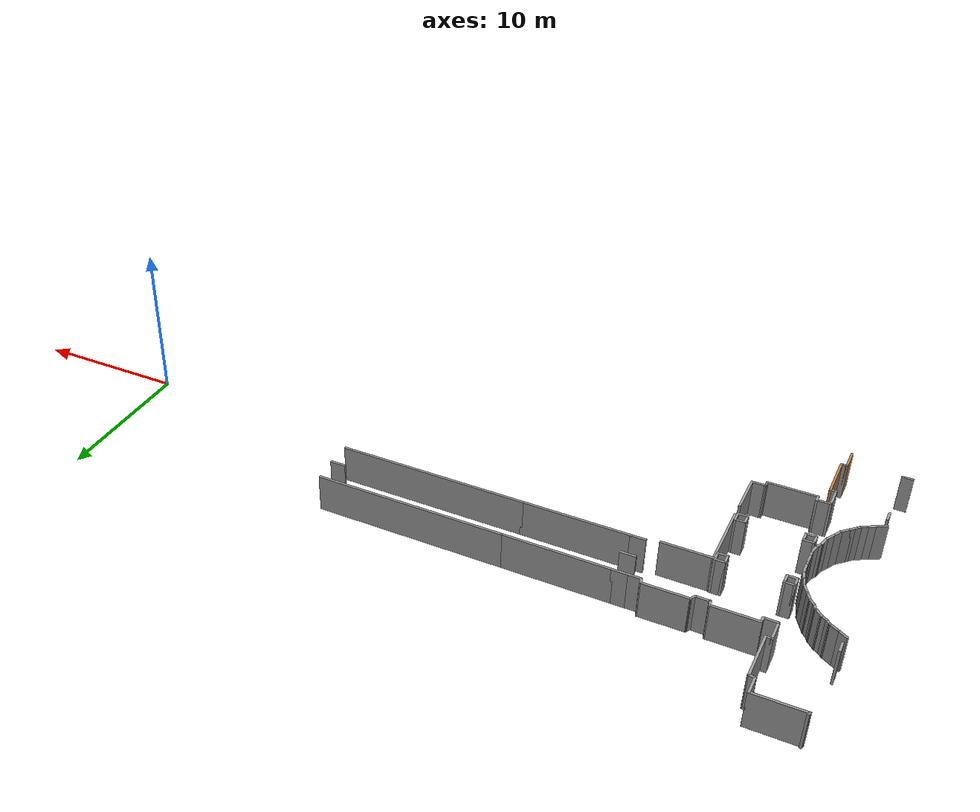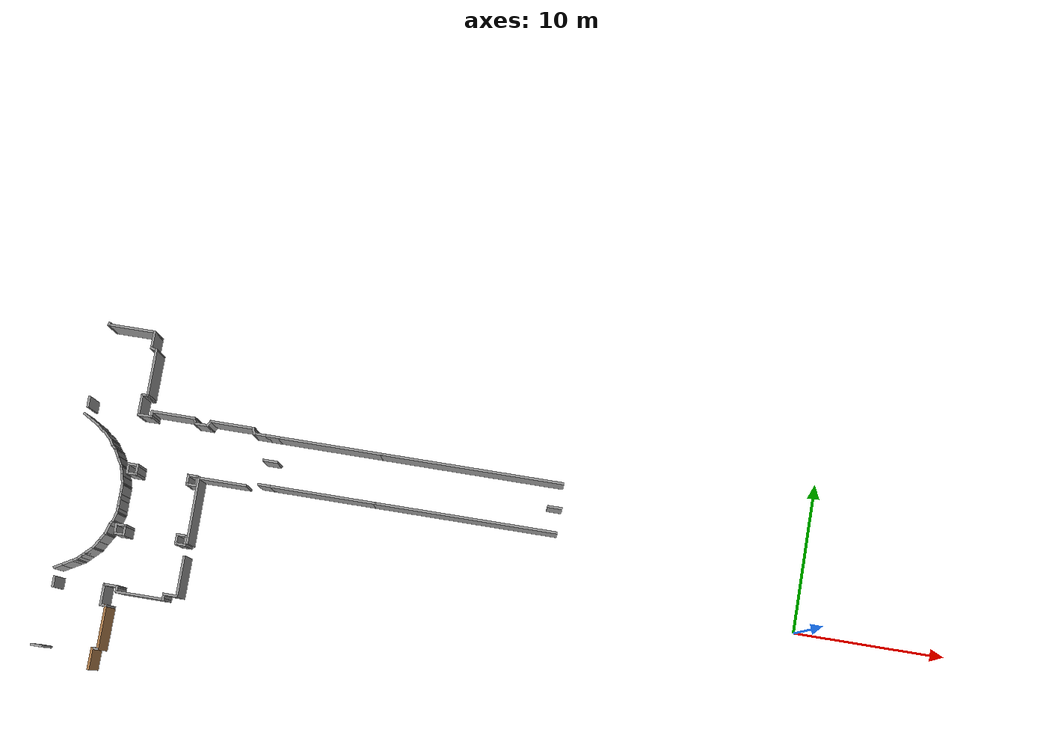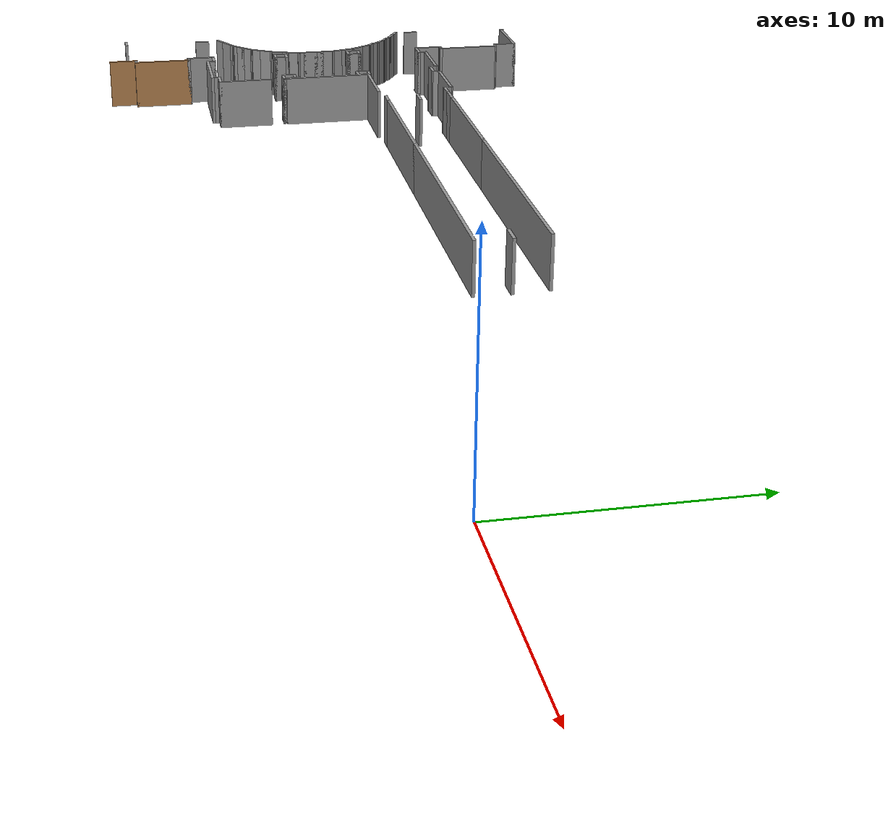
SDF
<sdf version="1.7">
 <model name="TD_1">
  <pose>-32.4963 -12.7971 0 0 -0 0</pose>
  <link name="Wall_222">
   <collision name="Wall_222_Collision">
    <geometry><box><size>1.5 0.15 2.5</size></box></geometry>
    <pose>0 0 1.25 0 -0 0</pose>
   </collision>
   <visual name="Wall_222_Visual">
    <pose>0 0 1.25 0 -0 0</pose>
    <geometry><box><size>1.5 0.15 2.5</size></box></geometry>
    <material>
     <script><uri>file://media/materials/scripts/gazebo.material</uri><name>Gazebo/Wood</name></script>
     <ambient>1 1 1 1</ambient>
    </material>
    <meta><layer>0</layer></meta>
   </visual>
   <pose>-12.7603 3.65938 0 0 -0 1.5708</pose>
  </link>
  <link name="Wall_223">
   <collision name="Wall_223_Collision">
    <geometry><box><size>0.5 0.15 2.5</size></box></geometry>
    <pose>0 0 1.25 0 -0 0</pose>
   </collision>
   <visual name="Wall_223_Visual">
    <pose>0 0 1.25 0 -0 0</pose>
    <geometry><box><size>0.5 0.15 2.5</size></box></geometry>
    <material>
     <script><uri>file://media/materials/scripts/gazebo.material</uri><name>Gazebo/Grey</name></script>
     <ambient>1 1 1 1</ambient>
    </material>
    <meta><layer>0</layer></meta>
   </visual>
   <pose>-12.5853 4.33438 0 0 -0 0</pose>
  </link>
  <link name="Wall_224">
   <collision name="Wall_224_Collision">
    <geometry><box><size>3 0.15 2.5</size></box></geometry>
    <pose>0 0 1.25 0 -0 0</pose>
   </collision>
   <visual name="Wall_224_Visual">
    <pose>0 0 1.25 0 -0 0</pose>
    <geometry><box><size>3 0.15 2.5</size></box></geometry>
    <material>
     <script><uri>file://media/materials/scripts/gazebo.material</uri><name>Gazebo/Wood</name></script>
     <ambient>1 1 1 1</ambient>
    </material>
    <meta><layer>0</layer></meta>
   </visual>
   <pose>-12.4103 5.75938 0 0 -0 1.5708</pose>
  </link>
  <link name="Wall_225">
   <collision name="Wall_225_Collision">
    <geometry><box><size>0.5 0.15 2.5</size></box></geometry>
    <pose>0 0 1.25 0 -0 0</pose>
   </collision>
   <visual name="Wall_225_Visual">
    <pose>0 0 1.25 0 -0 0</pose>
    <geometry><box><size>0.5 0.15 2.5</size></box></geometry>
    <material>
     <script><uri>file://media/materials/scripts/gazebo.material</uri><name>Gazebo/Grey</name></script>
     <ambient>1 1 1 1</ambient>
    </material>
    <meta><layer>0</layer></meta>
   </visual>
   <pose>-12.5853 7.18438 0 0 -0 3.14159</pose>
  </link>
  <link name="Wall_226">
   <collision name="Wall_226_Collision">
    <geometry><box><size>1.5 0.15 2.5</size></box></geometry>
    <pose>0 0 1.25 0 -0 0</pose>
   </collision>
   <visual name="Wall_226_Visual">
    <pose>0 0 1.25 0 -0 0</pose>
    <geometry><box><size>1.5 0.15 2.5</size></box></geometry>
    <material>
     <script><uri>file://media/materials/scripts/gazebo.material</uri><name>Gazebo/Grey</name></script>
     <ambient>1 1 1 1</ambient>
    </material>
    <meta><layer>0</layer></meta>
   </visual>
   <pose>-12.7603 7.85938 0 0 -0 1.5708</pose>
  </link>
  <link name="Wall_227">
   <collision name="Wall_227_Collision">
    <geometry><box><size>1 0.15 2.5</size></box></geometry>
    <pose>0 0 1.25 0 -0 0</pose>
   </collision>
   <visual name="Wall_227_Visual">
    <pose>0 0 1.25 0 -0 0</pose>
    <geometry><box><size>1 0.15 2.5</size></box></geometry>
    <material>
     <script><uri>file://media/materials/scripts/gazebo.material</uri><name>Gazebo/Grey</name></script>
     <ambient>1 1 1 1</ambient>
    </material>
    <meta><layer>0</layer></meta>
   </visual>
   <pose>-12.3353 8.53438 0 0 -0 0</pose>
  </link>
  <link name="Wall_228">
   <collision name="Wall_228_Collision">
    <geometry><box><size>0.5 0.15 2.5</size></box></geometry>
    <pose>0 0 1.25 0 -0 0</pose>
   </collision>
   <visual name="Wall_228_Visual">
    <pose>0 0 1.25 0 -0 0</pose>
    <geometry><box><size>0.5 0.15 2.5</size></box></geometry>
    <material>
     <script><uri>file://media/materials/scripts/gazebo.material</uri><name>Gazebo/Grey</name></script>
     <ambient>1 1 1 1</ambient>
    </material>
    <meta><layer>0</layer></meta>
   </visual>
   <pose>-11.9103 8.35938 0 0 -0 -1.5708</pose>
  </link>
  <link name="Wall_229">
   <collision name="Wall_229_Collision">
    <geometry><box><size>3.25 0.15 2.5</size></box></geometry>
    <pose>0 0 1.25 0 -0 0</pose>
   </collision>
   <visual name="Wall_229_Visual">
    <pose>0 0 1.25 0 -0 0</pose>
    <geometry><box><size>3.25 0.15 2.5</size></box></geometry>
    <material>
     <script><uri>file://media/materials/scripts/gazebo.material</uri><name>Gazebo/Grey</name></script>
     <ambient>1 1 1 1</ambient>
    </material>
    <meta><layer>0</layer></meta>
   </visual>
   <pose>-10.3603 8.18437 0 0 -0 0</pose>
  </link>
  <link name="Wall_230">
   <collision name="Wall_230_Collision">
    <geometry><box><size>0.5 0.15 2.5</size></box></geometry>
    <pose>0 0 1.25 0 -0 0</pose>
   </collision>
   <visual name="Wall_230_Visual">
    <pose>0 0 1.25 0 -0 0</pose>
    <geometry><box><size>0.5 0.15 2.5</size></box></geometry>
    <material>
     <script><uri>file://media/materials/scripts/gazebo.material</uri><name>Gazebo/Grey</name></script>
     <ambient>1 1 1 1</ambient>
    </material>
    <meta><layer>0</layer></meta>
   </visual>
   <pose>-8.81032 8.35938 0 0 -0 1.5708</pose>
  </link>
  <link name="Wall_231">
   <collision name="Wall_231_Collision">
    <geometry><box><size>1 0.15 2.5</size></box></geometry>
    <pose>0 0 1.25 0 -0 0</pose>
   </collision>
   <visual name="Wall_231_Visual">
    <pose>0 0 1.25 0 -0 0</pose>
    <geometry><box><size>1 0.15 2.5</size></box></geometry>
    <material>
     <script><uri>file://media/materials/scripts/gazebo.material</uri><name>Gazebo/Grey</name></script>
     <ambient>1 1 1 1</ambient>
    </material>
    <meta><layer>0</layer></meta>
   </visual>
   <pose>-8.38532 8.53438 0 0 -0 0</pose>
  </link>
  <link name="Wall_232">
   <collision name="Wall_232_Collision">
    <geometry><box><size>2.75 0.15 2.5</size></box></geometry>
    <pose>0 0 1.25 0 -0 0</pose>
   </collision>
   <visual name="Wall_232_Visual">
    <pose>0 0 1.25 0 -0 0</pose>
    <geometry><box><size>2.75 0.15 2.5</size></box></geometry>
    <material>
     <script><uri>file://media/materials/scripts/gazebo.material</uri><name>Gazebo/Grey</name></script>
     <ambient>1 1 1 1</ambient>
    </material>
    <meta><layer>0</layer></meta>
   </visual>
   <pose>-7.96032 9.83437 0 0 -0 1.5708</pose>
  </link>
  <link name="Wall_234">
   <collision name="Wall_234_Collision">
    <geometry><box><size>4.46986 0.15 2.5</size></box></geometry>
    <pose>0 0 1.25 0 -0 0</pose>
   </collision>
   <visual name="Wall_234_Visual">
    <pose>0 0 1.25 0 -0 0</pose>
    <geometry><box><size>4.46986 0.15 2.5</size></box></geometry>
    <material>
     <script><uri>file://media/materials/scripts/gazebo.material</uri><name>Gazebo/Grey</name></script>
     <ambient>1 1 1 1</ambient>
    </material>
    <meta><layer>0</layer></meta>
   </visual>
   <pose>-7.95775 14.2468 0 0 -0 1.5778</pose>
  </link>
  <link name="Wall_235">
   <collision name="Wall_235_Collision">
    <geometry><box><size>3.25 0.15 2.5</size></box></geometry>
    <pose>0 0 1.25 0 -0 0</pose>
   </collision>
   <visual name="Wall_235_Visual">
    <pose>0 0 1.25 0 -0 0</pose>
    <geometry><box><size>3.25 0.15 2.5</size></box></geometry>
    <material>
     <script><uri>file://media/materials/scripts/gazebo.material</uri><name>Gazebo/Grey</name></script>
     <ambient>1 1 1 1</ambient>
    </material>
    <meta><layer>0</layer></meta>
   </visual>
   <pose>-6.42287 16.4067 0 0 -0 0</pose>
  </link>
  <link name="Wall_286">
   <collision name="Wall_286_Collision">
    <geometry><box><size>0.25 0.15 2.5</size></box></geometry>
    <pose>0 0 1.25 0 -0 0</pose>
   </collision>
   <visual name="Wall_286_Visual">
    <pose>0 0 1.25 0 -0 0</pose>
    <geometry><box><size>0.25 0.15 2.5</size></box></geometry>
    <material>
     <script><uri>file://media/materials/scripts/gazebo.material</uri><name>Gazebo/Grey</name></script>
     <ambient>1 1 1 1</ambient>
    </material>
    <meta><layer>0</layer></meta>
   </visual>
   <pose>-15.7527 25.6097 0 0 -0 -1.8326</pose>
  </link>
  <link name="Wall_287">
   <collision name="Wall_287_Collision">
    <geometry><box><size>3.25 0.15 2.5</size></box></geometry>
    <pose>0 0 1.25 0 -0 0</pose>
   </collision>
   <visual name="Wall_287_Visual">
    <pose>0 0 1.25 0 -0 0</pose>
    <geometry><box><size>3.25 0.15 2.5</size></box></geometry>
    <material>
     <script><uri>file://media/materials/scripts/gazebo.material</uri><name>Gazebo/Grey</name></script>
     <ambient>1 1 1 1</ambient>
    </material>
    <meta><layer>0</layer></meta>
   </visual>
   <pose>-14.2156 25.5614 0 0 -0 0</pose>
  </link>
  <link name="Wall_288">
   <collision name="Wall_288_Collision">
    <geometry><box><size>1.25 0.15 2.5</size></box></geometry>
    <pose>0 0 1.25 0 -0 0</pose>
   </collision>
   <visual name="Wall_288_Visual">
    <pose>0 0 1.25 0 -0 0</pose>
    <geometry><box><size>1.25 0.15 2.5</size></box></geometry>
    <material>
     <script><uri>file://media/materials/scripts/gazebo.material</uri><name>Gazebo/Grey</name></script>
     <ambient>1 1 1 1</ambient>
    </material>
    <meta><layer>0</layer></meta>
   </visual>
   <pose>-12.6656 25.0114 0 0 -0 -1.5708</pose>
  </link>
  <link name="Wall_289">
   <collision name="Wall_289_Collision">
    <geometry><box><size>0.5 0.15 2.5</size></box></geometry>
    <pose>0 0 1.25 0 -0 0</pose>
   </collision>
   <visual name="Wall_289_Visual">
    <pose>0 0 1.25 0 -0 0</pose>
    <geometry><box><size>0.5 0.15 2.5</size></box></geometry>
    <material>
     <script><uri>file://media/materials/scripts/gazebo.material</uri><name>Gazebo/Grey</name></script>
     <ambient>1 1 1 1</ambient>
    </material>
    <meta><layer>0</layer></meta>
   </visual>
   <pose>-12.4966 24.4161 0 0 -0 -0.261799</pose>
  </link>
  <link name="Wall_290">
   <collision name="Wall_290_Collision">
    <geometry><box><size>3.25 0.15 2.5</size></box></geometry>
    <pose>0 0 1.25 0 -0 0</pose>
   </collision>
   <visual name="Wall_290_Visual">
    <pose>0 0 1.25 0 -0 0</pose>
    <geometry><box><size>3.25 0.15 2.5</size></box></geometry>
    <material>
     <script><uri>file://media/materials/scripts/gazebo.material</uri><name>Gazebo/Grey</name></script>
     <ambient>1 1 1 1</ambient>
    </material>
    <meta><layer>0</layer></meta>
   </visual>
   <pose>-12.3275 22.8208 0 0 -0 -1.5708</pose>
  </link>
  <link name="Wall_291">
   <collision name="Wall_291_Collision">
    <geometry><box><size>0.5 0.15 2.5</size></box></geometry>
    <pose>0 0 1.25 0 -0 0</pose>
   </collision>
   <visual name="Wall_291_Visual">
    <pose>0 0 1.25 0 -0 0</pose>
    <geometry><box><size>0.5 0.15 2.5</size></box></geometry>
    <material>
     <script><uri>file://media/materials/scripts/gazebo.material</uri><name>Gazebo/Grey</name></script>
     <ambient>1 1 1 1</ambient>
    </material>
    <meta><layer>0</layer></meta>
   </visual>
   <pose>-12.5025 21.2708 0 0 -0 3.14159</pose>
  </link>
  <link name="Wall_292">
   <collision name="Wall_292_Collision">
    <geometry><box><size>1.5 0.15 2.5</size></box></geometry>
    <pose>0 0 1.25 0 -0 0</pose>
   </collision>
   <visual name="Wall_292_Visual">
    <pose>0 0 1.25 0 -0 0</pose>
    <geometry><box><size>1.5 0.15 2.5</size></box></geometry>
    <material>
     <script><uri>file://media/materials/scripts/gazebo.material</uri><name>Gazebo/Grey</name></script>
     <ambient>1 1 1 1</ambient>
    </material>
    <meta><layer>0</layer></meta>
   </visual>
   <pose>-12.6775 20.5958 0 0 -0 -1.5708</pose>
  </link>
  <link name="Wall_293">
   <collision name="Wall_293_Collision">
    <geometry><box><size>1 0.15 2.5</size></box></geometry>
    <pose>0 0 1.25 0 -0 0</pose>
   </collision>
   <visual name="Wall_293_Visual">
    <pose>0 0 1.25 0 -0 0</pose>
    <geometry><box><size>1 0.15 2.5</size></box></geometry>
    <material>
     <script><uri>file://media/materials/scripts/gazebo.material</uri><name>Gazebo/Grey</name></script>
     <ambient>1 1 1 1</ambient>
    </material>
    <meta><layer>0</layer></meta>
   </visual>
   <pose>-12.2525 19.9208 0 0 -0 0</pose>
  </link>
  <link name="Wall_294">
   <collision name="Wall_294_Collision">
    <geometry><box><size>0.5 0.15 2.5</size></box></geometry>
    <pose>0 0 1.25 0 -0 0</pose>
   </collision>
   <visual name="Wall_294_Visual">
    <pose>0 0 1.25 0 -0 0</pose>
    <geometry><box><size>0.5 0.15 2.5</size></box></geometry>
    <material>
     <script><uri>file://media/materials/scripts/gazebo.material</uri><name>Gazebo/Grey</name></script>
     <ambient>1 1 1 1</ambient>
    </material>
    <meta><layer>0</layer></meta>
   </visual>
   <pose>-11.8275 20.0958 0 0 -0 1.5708</pose>
  </link>
  <link name="Wall_295">
   <collision name="Wall_295_Collision">
    <geometry><box><size>3 0.15 2.5</size></box></geometry>
    <pose>0 0 1.25 0 -0 0</pose>
   </collision>
   <visual name="Wall_295_Visual">
    <pose>0 0 1.25 0 -0 0</pose>
    <geometry><box><size>3 0.15 2.5</size></box></geometry>
    <material>
     <script><uri>file://media/materials/scripts/gazebo.material</uri><name>Gazebo/Grey</name></script>
     <ambient>1 1 1 1</ambient>
    </material>
    <meta><layer>0</layer></meta>
   </visual>
   <pose>-10.4025 20.2708 0 0 -0 0</pose>
  </link>
  <link name="Wall_296">
   <collision name="Wall_296_Collision">
    <geometry><box><size>0.5 0.15 2.5</size></box></geometry>
    <pose>0 0 1.25 0 -0 0</pose>
   </collision>
   <visual name="Wall_296_Visual">
    <pose>0 0 1.25 0 -0 0</pose>
    <geometry><box><size>0.5 0.15 2.5</size></box></geometry>
    <material>
     <script><uri>file://media/materials/scripts/gazebo.material</uri><name>Gazebo/Grey</name></script>
     <ambient>1 1 1 1</ambient>
    </material>
    <meta><layer>0</layer></meta>
   </visual>
   <pose>-8.93223 20.1017 0 0 -0 -1.309</pose>
  </link>
  <link name="Wall_297">
   <collision name="Wall_297_Collision">
    <geometry><box><size>1 0.15 2.5</size></box></geometry>
    <pose>0 0 1.25 0 -0 0</pose>
   </collision>
   <visual name="Wall_297_Visual">
    <pose>0 0 1.25 0 -0 0</pose>
    <geometry><box><size>1 0.15 2.5</size></box></geometry>
    <material>
     <script><uri>file://media/materials/scripts/gazebo.material</uri><name>Gazebo/Grey</name></script>
     <ambient>1 1 1 1</ambient>
    </material>
    <meta><layer>0</layer></meta>
   </visual>
   <pose>-8.46194 19.9327 0 0 -0 0</pose>
  </link>
  <link name="Wall_298">
   <collision name="Wall_298_Collision">
    <geometry><box><size>0.5 0.15 2.5</size></box></geometry>
    <pose>0 0 1.25 0 -0 0</pose>
   </collision>
   <visual name="Wall_298_Visual">
    <pose>0 0 1.25 0 -0 0</pose>
    <geometry><box><size>0.5 0.15 2.5</size></box></geometry>
    <material>
     <script><uri>file://media/materials/scripts/gazebo.material</uri><name>Gazebo/Grey</name></script>
     <ambient>1 1 1 1</ambient>
    </material>
    <meta><layer>0</layer></meta>
   </visual>
   <pose>-7.94944 20.0842 0 0 -0 1.0472</pose>
  </link>
  <link name="Wall_299">
   <collision name="Wall_299_Collision">
    <geometry><box><size>3 0.15 2.5</size></box></geometry>
    <pose>0 0 1.25 0 -0 0</pose>
   </collision>
   <visual name="Wall_299_Visual">
    <pose>0 0 1.25 0 -0 0</pose>
    <geometry><box><size>3 0.15 2.5</size></box></geometry>
    <material>
     <script><uri>file://media/materials/scripts/gazebo.material</uri><name>Gazebo/Grey</name></script>
     <ambient>1 1 1 1</ambient>
    </material>
    <meta><layer>0</layer></meta>
   </visual>
   <pose>-6.43694 20.2358 0 0 -0 0</pose>
  </link>
  <link name="Wall_300">
   <collision name="Wall_300_Collision">
    <geometry><box><size>0.5 0.15 2.5</size></box></geometry>
    <pose>0 0 1.25 0 -0 0</pose>
   </collision>
   <visual name="Wall_300_Visual">
    <pose>0 0 1.25 0 -0 0</pose>
    <geometry><box><size>0.5 0.15 2.5</size></box></geometry>
    <material>
     <script><uri>file://media/materials/scripts/gazebo.material</uri><name>Gazebo/Grey</name></script>
     <ambient>1 1 1 1</ambient>
    </material>
    <meta><layer>0</layer></meta>
   </visual>
   <pose>-4.96664 20.0668 0 0 -0 -1.309</pose>
  </link>
  <link name="Wall_302">
   <collision name="Wall_302_Collision">
    <geometry><box><size>1 0.15 2.5</size></box></geometry>
    <pose>0 0 1.25 0 -0 0</pose>
   </collision>
   <visual name="Wall_302_Visual">
    <pose>0 0 1.25 0 -0 0</pose>
    <geometry><box><size>1 0.15 2.5</size></box></geometry>
    <material>
     <script><uri>file://media/materials/scripts/gazebo.material</uri><name>Gazebo/Grey</name></script>
     <ambient>1 1 1 1</ambient>
    </material>
    <meta><layer>0</layer></meta>
   </visual>
   <pose>-4.49635 19.8977 0 0 -0 0</pose>
  </link>
  <link name="Wall_351">
   <collision name="Wall_351_Collision">
    <geometry><box><size>0.75 0.15 2.5</size></box></geometry>
    <pose>0 0 1.25 0 -0 0</pose>
   </collision>
   <visual name="Wall_351_Visual">
    <pose>0 0 1.25 0 -0 0</pose>
    <geometry><box><size>0.75 0.15 2.5</size></box></geometry>
    <material>
     <script><uri>file://media/materials/scripts/gazebo.material</uri><name>Gazebo/Grey</name></script>
     <ambient>1 1 1 1</ambient>
    </material>
    <meta><layer>0</layer></meta>
   </visual>
   <pose>-15.9318 9.26072 0 0 -0 0.523599</pose>
  </link>
  <link name="Wall_352">
   <collision name="Wall_352_Collision">
    <geometry><box><size>0.75 0.15 2.5</size></box></geometry>
    <pose>0 0 1.25 0 -0 0</pose>
   </collision>
   <visual name="Wall_352_Visual">
    <pose>0 0 1.25 0 -0 0</pose>
    <geometry><box><size>0.75 0.15 2.5</size></box></geometry>
    <material>
     <script><uri>file://media/materials/scripts/gazebo.material</uri><name>Gazebo/Grey</name></script>
     <ambient>1 1 1 1</ambient>
    </material>
    <meta><layer>0</layer></meta>
   </visual>
   <pose>-15.4121 9.56072 0 0 -0 0.523599</pose>
  </link>
  <link name="Wall_353">
   <collision name="Wall_353_Collision">
    <geometry><box><size>0.5 0.15 2.5</size></box></geometry>
    <pose>0 0 1.25 0 -0 0</pose>
   </collision>
   <visual name="Wall_353_Visual">
    <pose>0 0 1.25 0 -0 0</pose>
    <geometry><box><size>0.5 0.15 2.5</size></box></geometry>
    <material>
     <script><uri>file://media/materials/scripts/gazebo.material</uri><name>Gazebo/Grey</name></script>
     <ambient>1 1 1 1</ambient>
    </material>
    <meta><layer>0</layer></meta>
   </visual>
   <pose>-15.0008 9.79822 0 0 -0 0.523599</pose>
  </link>
  <link name="Wall_354">
   <collision name="Wall_354_Collision">
    <geometry><box><size>0.5 0.15 2.5</size></box></geometry>
    <pose>0 0 1.25 0 -0 0</pose>
   </collision>
   <visual name="Wall_354_Visual">
    <pose>0 0 1.25 0 -0 0</pose>
    <geometry><box><size>0.5 0.15 2.5</size></box></geometry>
    <material>
     <script><uri>file://media/materials/scripts/gazebo.material</uri><name>Gazebo/Grey</name></script>
     <ambient>1 1 1 1</ambient>
    </material>
    <meta><layer>0</layer></meta>
   </visual>
   <pose>-14.7255 10.0095 0 0 -0 0.785398</pose>
  </link>
  <link name="Wall_355">
   <collision name="Wall_355_Collision">
    <geometry><box><size>0.5 0.15 2.5</size></box></geometry>
    <pose>0 0 1.25 0 -0 0</pose>
   </collision>
   <visual name="Wall_355_Visual">
    <pose>0 0 1.25 0 -0 0</pose>
    <geometry><box><size>0.5 0.15 2.5</size></box></geometry>
    <material>
     <script><uri>file://media/materials/scripts/gazebo.material</uri><name>Gazebo/Grey</name></script>
     <ambient>1 1 1 1</ambient>
    </material>
    <meta><layer>0</layer></meta>
   </visual>
   <pose>-14.478 10.2569 0 0 -0 0.785398</pose>
  </link>
  <link name="Wall_356">
   <collision name="Wall_356_Collision">
    <geometry><box><size>0.75 0.15 2.5</size></box></geometry>
    <pose>0 0 1.25 0 -0 0</pose>
   </collision>
   <visual name="Wall_356_Visual">
    <pose>0 0 1.25 0 -0 0</pose>
    <geometry><box><size>0.75 0.15 2.5</size></box></geometry>
    <material>
     <script><uri>file://media/materials/scripts/gazebo.material</uri><name>Gazebo/Grey</name></script>
     <ambient>1 1 1 1</ambient>
    </material>
    <meta><layer>0</layer></meta>
   </visual>
   <pose>-14.1421 10.5928 0 0 -0 0.785398</pose>
  </link>
  <link name="Wall_357">
   <collision name="Wall_357_Collision">
    <geometry><box><size>0.75 0.15 2.5</size></box></geometry>
    <pose>0 0 1.25 0 -0 0</pose>
   </collision>
   <visual name="Wall_357_Visual">
    <pose>0 0 1.25 0 -0 0</pose>
    <geometry><box><size>0.75 0.15 2.5</size></box></geometry>
    <material>
     <script><uri>file://media/materials/scripts/gazebo.material</uri><name>Gazebo/Grey</name></script>
     <ambient>1 1 1 1</ambient>
    </material>
    <meta><layer>0</layer></meta>
   </visual>
   <pose>-13.78 11.0648 0 0 -0 1.0472</pose>
  </link>
  <link name="Wall_358">
   <collision name="Wall_358_Collision">
    <geometry><box><size>0.75 0.15 2.5</size></box></geometry>
    <pose>0 0 1.25 0 -0 0</pose>
   </collision>
   <visual name="Wall_358_Visual">
    <pose>0 0 1.25 0 -0 0</pose>
    <geometry><box><size>0.75 0.15 2.5</size></box></geometry>
    <material>
     <script><uri>file://media/materials/scripts/gazebo.material</uri><name>Gazebo/Grey</name></script>
     <ambient>1 1 1 1</ambient>
    </material>
    <meta><layer>0</layer></meta>
   </visual>
   <pose>-13.48 11.5844 0 0 -0 1.0472</pose>
  </link>
  <link name="Wall_359">
   <collision name="Wall_359_Collision">
    <geometry><box><size>0.75 0.15 2.5</size></box></geometry>
    <pose>0 0 1.25 0 -0 0</pose>
   </collision>
   <visual name="Wall_359_Visual">
    <pose>0 0 1.25 0 -0 0</pose>
    <geometry><box><size>0.75 0.15 2.5</size></box></geometry>
    <material>
     <script><uri>file://media/materials/scripts/gazebo.material</uri><name>Gazebo/Grey</name></script>
     <ambient>1 1 1 1</ambient>
    </material>
    <meta><layer>0</layer></meta>
   </visual>
   <pose>-13.2523 12.134 0 0 -0 1.309</pose>
  </link>
  <link name="Wall_360">
   <collision name="Wall_360_Collision">
    <geometry><box><size>0.5 0.15 2.5</size></box></geometry>
    <pose>0 0 1.25 0 -0 0</pose>
   </collision>
   <visual name="Wall_360_Visual">
    <pose>0 0 1.25 0 -0 0</pose>
    <geometry><box><size>0.5 0.15 2.5</size></box></geometry>
    <material>
     <script><uri>file://media/materials/scripts/gazebo.material</uri><name>Gazebo/Grey</name></script>
     <ambient>1 1 1 1</ambient>
    </material>
    <meta><layer>0</layer></meta>
   </visual>
   <pose>-13.0872 12.5753 0 0 -0 1.0472</pose>
  </link>
  <link name="Wall_361">
   <collision name="Wall_361_Collision">
    <geometry><box><size>0.75 0.15 2.5</size></box></geometry>
    <pose>0 0 1.25 0 -0 0</pose>
   </collision>
   <visual name="Wall_361_Visual">
    <pose>0 0 1.25 0 -0 0</pose>
    <geometry><box><size>0.75 0.15 2.5</size></box></geometry>
    <material>
     <script><uri>file://media/materials/scripts/gazebo.material</uri><name>Gazebo/Grey</name></script>
     <ambient>1 1 1 1</ambient>
    </material>
    <meta><layer>0</layer></meta>
   </visual>
   <pose>-12.9221 13.0166 0 0 -0 1.309</pose>
  </link>
  <link name="Wall_362">
   <collision name="Wall_362_Collision">
    <geometry><box><size>0.5 0.15 2.5</size></box></geometry>
    <pose>0 0 1.25 0 -0 0</pose>
   </collision>
   <visual name="Wall_362_Visual">
    <pose>0 0 1.25 0 -0 0</pose>
    <geometry><box><size>0.5 0.15 2.5</size></box></geometry>
    <material>
     <script><uri>file://media/materials/scripts/gazebo.material</uri><name>Gazebo/Grey</name></script>
     <ambient>1 1 1 1</ambient>
    </material>
    <meta><layer>0</layer></meta>
   </visual>
   <pose>-12.8444 13.4814 0 0 -0 1.5708</pose>
  </link>
  <link name="Wall_363">
   <collision name="Wall_363_Collision">
    <geometry><box><size>0.75 0.15 2.5</size></box></geometry>
    <pose>0 0 1.25 0 -0 0</pose>
   </collision>
   <visual name="Wall_363_Visual">
    <pose>0 0 1.25 0 -0 0</pose>
    <geometry><box><size>0.75 0.15 2.5</size></box></geometry>
    <material>
     <script><uri>file://media/materials/scripts/gazebo.material</uri><name>Gazebo/Grey</name></script>
     <ambient>1 1 1 1</ambient>
    </material>
    <meta><layer>0</layer></meta>
   </visual>
   <pose>-12.8444 13.9564 0 0 -0 1.5708</pose>
  </link>
  <link name="Wall_364">
   <collision name="Wall_364_Collision">
    <geometry><box><size>0.5 0.15 2.5</size></box></geometry>
    <pose>0 0 1.25 0 -0 0</pose>
   </collision>
   <visual name="Wall_364_Visual">
    <pose>0 0 1.25 0 -0 0</pose>
    <geometry><box><size>0.5 0.15 2.5</size></box></geometry>
    <material>
     <script><uri>file://media/materials/scripts/gazebo.material</uri><name>Gazebo/Grey</name></script>
     <ambient>1 1 1 1</ambient>
    </material>
    <meta><layer>0</layer></meta>
   </visual>
   <pose>-12.8444 14.4314 0 0 -0 1.5708</pose>
  </link>
  <link name="Wall_365">
   <collision name="Wall_365_Collision">
    <geometry><box><size>0.75 0.15 2.5</size></box></geometry>
    <pose>0 0 1.25 0 -0 0</pose>
   </collision>
   <visual name="Wall_365_Visual">
    <pose>0 0 1.25 0 -0 0</pose>
    <geometry><box><size>0.75 0.15 2.5</size></box></geometry>
    <material>
     <script><uri>file://media/materials/scripts/gazebo.material</uri><name>Gazebo/Grey</name></script>
     <ambient>1 1 1 1</ambient>
    </material>
    <meta><layer>0</layer></meta>
   </visual>
   <pose>-12.8444 14.9064 0 0 -0 1.5708</pose>
  </link>
  <link name="Wall_366">
   <collision name="Wall_366_Collision">
    <geometry><box><size>0.75 0.15 2.5</size></box></geometry>
    <pose>0 0 1.25 0 -0 0</pose>
   </collision>
   <visual name="Wall_366_Visual">
    <pose>0 0 1.25 0 -0 0</pose>
    <geometry><box><size>0.75 0.15 2.5</size></box></geometry>
    <material>
     <script><uri>file://media/materials/scripts/gazebo.material</uri><name>Gazebo/Grey</name></script>
     <ambient>1 1 1 1</ambient>
    </material>
    <meta><layer>0</layer></meta>
   </visual>
   <pose>-12.9221 15.4962 0 0 -0 1.8326</pose>
  </link>
  <link name="Wall_368">
   <collision name="Wall_368_Collision">
    <geometry><box><size>0.75 0.15 2.5</size></box></geometry>
    <pose>0 0 1.25 0 -0 0</pose>
   </collision>
   <visual name="Wall_368_Visual">
    <pose>0 0 1.25 0 -0 0</pose>
    <geometry><box><size>0.75 0.15 2.5</size></box></geometry>
    <material>
     <script><uri>file://media/materials/scripts/gazebo.material</uri><name>Gazebo/Grey</name></script>
     <ambient>1 1 1 1</ambient>
    </material>
    <meta><layer>0</layer></meta>
   </visual>
   <pose>-13.0773 16.0757 0 0 -0 1.8326</pose>
  </link>
  <link name="Wall_369">
   <collision name="Wall_369_Collision">
    <geometry><box><size>0.75 0.15 2.5</size></box></geometry>
    <pose>0 0 1.25 0 -0 0</pose>
   </collision>
   <visual name="Wall_369_Visual">
    <pose>0 0 1.25 0 -0 0</pose>
    <geometry><box><size>0.75 0.15 2.5</size></box></geometry>
    <material>
     <script><uri>file://media/materials/scripts/gazebo.material</uri><name>Gazebo/Grey</name></script>
     <ambient>1 1 1 1</ambient>
    </material>
    <meta><layer>0</layer></meta>
   </visual>
   <pose>-13.305 16.6253 0 0 -0 2.0944</pose>
  </link>
  <link name="Wall_370">
   <collision name="Wall_370_Collision">
    <geometry><box><size>0.75 0.15 2.5</size></box></geometry>
    <pose>0 0 1.25 0 -0 0</pose>
   </collision>
   <visual name="Wall_370_Visual">
    <pose>0 0 1.25 0 -0 0</pose>
    <geometry><box><size>0.75 0.15 2.5</size></box></geometry>
    <material>
     <script><uri>file://media/materials/scripts/gazebo.material</uri><name>Gazebo/Grey</name></script>
     <ambient>1 1 1 1</ambient>
    </material>
    <meta><layer>0</layer></meta>
   </visual>
   <pose>-13.605 17.1449 0 0 -0 2.0944</pose>
  </link>
  <link name="Wall_371">
   <collision name="Wall_371_Collision">
    <geometry><box><size>0.5 0.15 2.5</size></box></geometry>
    <pose>0 0 1.25 0 -0 0</pose>
   </collision>
   <visual name="Wall_371_Visual">
    <pose>0 0 1.25 0 -0 0</pose>
    <geometry><box><size>0.5 0.15 2.5</size></box></geometry>
    <material>
     <script><uri>file://media/materials/scripts/gazebo.material</uri><name>Gazebo/Grey</name></script>
     <ambient>1 1 1 1</ambient>
    </material>
    <meta><layer>0</layer></meta>
   </visual>
   <pose>-13.8787 17.5285 0 0 -0 2.35619</pose>
  </link>
  <link name="Wall_372">
   <collision name="Wall_372_Collision">
    <geometry><box><size>0.5 0.15 2.5</size></box></geometry>
    <pose>0 0 1.25 0 -0 0</pose>
   </collision>
   <visual name="Wall_372_Visual">
    <pose>0 0 1.25 0 -0 0</pose>
    <geometry><box><size>0.5 0.15 2.5</size></box></geometry>
    <material>
     <script><uri>file://media/materials/scripts/gazebo.material</uri><name>Gazebo/Grey</name></script>
     <ambient>1 1 1 1</ambient>
    </material>
    <meta><layer>0</layer></meta>
   </visual>
   <pose>-14.09 17.8038 0 0 -0 2.0944</pose>
  </link>
  <link name="Wall_373">
   <collision name="Wall_373_Collision">
    <geometry><box><size>0.75 0.15 2.5</size></box></geometry>
    <pose>0 0 1.25 0 -0 0</pose>
   </collision>
   <visual name="Wall_373_Visual">
    <pose>0 0 1.25 0 -0 0</pose>
    <geometry><box><size>0.75 0.15 2.5</size></box></geometry>
    <material>
     <script><uri>file://media/materials/scripts/gazebo.material</uri><name>Gazebo/Grey</name></script>
     <ambient>1 1 1 1</ambient>
    </material>
    <meta><layer>0</layer></meta>
   </visual>
   <pose>-14.3896 18.1675 0 0 -0 2.35619</pose>
  </link>
  <link name="Wall_374">
   <collision name="Wall_374_Collision">
    <geometry><box><size>0.5 0.15 2.5</size></box></geometry>
    <pose>0 0 1.25 0 -0 0</pose>
   </collision>
   <visual name="Wall_374_Visual">
    <pose>0 0 1.25 0 -0 0</pose>
    <geometry><box><size>0.5 0.15 2.5</size></box></geometry>
    <material>
     <script><uri>file://media/materials/scripts/gazebo.material</uri><name>Gazebo/Grey</name></script>
     <ambient>1 1 1 1</ambient>
    </material>
    <meta><layer>0</layer></meta>
   </visual>
   <pose>-14.7533 18.4671 0 0 -0 2.61799</pose>
  </link>
  <link name="Wall_375">
   <collision name="Wall_375_Collision">
    <geometry><box><size>0.5 0.15 2.5</size></box></geometry>
    <pose>0 0 1.25 0 -0 0</pose>
   </collision>
   <visual name="Wall_375_Visual">
    <pose>0 0 1.25 0 -0 0</pose>
    <geometry><box><size>0.5 0.15 2.5</size></box></geometry>
    <material>
     <script><uri>file://media/materials/scripts/gazebo.material</uri><name>Gazebo/Grey</name></script>
     <ambient>1 1 1 1</ambient>
    </material>
    <meta><layer>0</layer></meta>
   </visual>
   <pose>-15.0286 18.6784 0 0 -0 2.35619</pose>
  </link>
  <link name="Wall_376">
   <collision name="Wall_376_Collision">
    <geometry><box><size>0.75 0.15 2.5</size></box></geometry>
    <pose>0 0 1.25 0 -0 0</pose>
   </collision>
   <visual name="Wall_376_Visual">
    <pose>0 0 1.25 0 -0 0</pose>
    <geometry><box><size>0.75 0.15 2.5</size></box></geometry>
    <material>
     <script><uri>file://media/materials/scripts/gazebo.material</uri><name>Gazebo/Grey</name></script>
     <ambient>1 1 1 1</ambient>
    </material>
    <meta><layer>0</layer></meta>
   </visual>
   <pose>-15.4121 18.9521 0 0 -0 2.61799</pose>
  </link>
  <link name="Wall_377">
   <collision name="Wall_377_Collision">
    <geometry><box><size>0.75 0.15 2.5</size></box></geometry>
    <pose>0 0 1.25 0 -0 0</pose>
   </collision>
   <visual name="Wall_377_Visual">
    <pose>0 0 1.25 0 -0 0</pose>
    <geometry><box><size>0.75 0.15 2.5</size></box></geometry>
    <material>
     <script><uri>file://media/materials/scripts/gazebo.material</uri><name>Gazebo/Grey</name></script>
     <ambient>1 1 1 1</ambient>
    </material>
    <meta><layer>0</layer></meta>
   </visual>
   <pose>-15.9318 19.2521 0 0 -0 2.61799</pose>
  </link>
  <link name="Wall_411">
   <collision name="Wall_411_Collision">
    <geometry><box><size>0.75 0.15 2.5</size></box></geometry>
    <pose>0 0 1.25 0 -0 0</pose>
   </collision>
   <visual name="Wall_411_Visual">
    <pose>0 0 1.25 0 -0 0</pose>
    <geometry><box><size>0.75 0.15 2.5</size></box></geometry>
    <material>
     <script><uri>file://media/materials/scripts/gazebo.material</uri><name>Gazebo/Grey</name></script>
     <ambient>1 1 1 1</ambient>
    </material>
    <meta><layer>0</layer></meta>
   </visual>
   <pose>-16.3692 3.93429 0 0 -0 3.14159</pose>
  </link>
  <link name="Wall_420">
   <collision name="Wall_420_Collision">
    <geometry><box><size>0.75 0.15 2.5</size></box></geometry>
    <pose>0 0 1.25 0 -0 0</pose>
   </collision>
   <visual name="Wall_420_Visual">
    <pose>0 0 1.25 0 -0 0</pose>
    <geometry><box><size>0.75 0.15 2.5</size></box></geometry>
    <material>
     <script><uri>file://media/materials/scripts/gazebo.material</uri><name>Gazebo/Grey</name></script>
     <ambient>1 1 1 1</ambient>
    </material>
    <meta><layer>0</layer></meta>
   </visual>
   <pose>-16.0707 8.1871 0 0 -0 1.5708</pose>
  </link>
  <link name="Wall_440">
   <collision name="Wall_440_Collision">
    <geometry><box><size>0.75 0.15 2.5</size></box></geometry>
    <pose>0 0 1.25 0 -0 0</pose>
   </collision>
   <visual name="Wall_440_Visual">
    <pose>0 0 1.25 0 -0 0</pose>
    <geometry><box><size>0.75 0.15 2.5</size></box></geometry>
    <material>
     <script><uri>file://media/materials/scripts/gazebo.material</uri><name>Gazebo/Grey</name></script>
     <ambient>1 1 1 1</ambient>
    </material>
    <meta><layer>0</layer></meta>
   </visual>
   <pose>-16.0889 20.2384 0 0 -0 1.5708</pose>
  </link>
  <link name="Wall_443">
   <collision name="Wall_443_Collision">
    <geometry><box><size>0.75 0.15 2.5</size></box></geometry>
    <pose>0 0 1.25 0 -0 0</pose>
   </collision>
   <visual name="Wall_443_Visual">
    <pose>0 0 1.25 0 -0 0</pose>
    <geometry><box><size>0.75 0.15 2.5</size></box></geometry>
    <material>
     <script><uri>file://media/materials/scripts/gazebo.material</uri><name>Gazebo/Grey</name></script>
     <ambient>1 1 1 1</ambient>
    </material>
    <meta><layer>0</layer></meta>
   </visual>
   <pose>-12.6965 16.2914 0 0 -0 -1.5708</pose>
  </link>
  <link name="Wall_444">
   <collision name="Wall_444_Collision">
    <geometry><box><size>0.75 0.15 2.5</size></box></geometry>
    <pose>0 0 1.25 0 -0 0</pose>
   </collision>
   <visual name="Wall_444_Visual">
    <pose>0 0 1.25 0 -0 0</pose>
    <geometry><box><size>0.75 0.15 2.5</size></box></geometry>
    <material>
     <script><uri>file://media/materials/scripts/gazebo.material</uri><name>Gazebo/Grey</name></script>
     <ambient>1 1 1 1</ambient>
    </material>
    <meta><layer>0</layer></meta>
   </visual>
   <pose>-12.3965 15.9914 0 0 -0 0</pose>
  </link>
  <link name="Wall_445">
   <collision name="Wall_445_Collision">
    <geometry><box><size>0.75 0.15 2.5</size></box></geometry>
    <pose>0 0 1.25 0 -0 0</pose>
   </collision>
   <visual name="Wall_445_Visual">
    <pose>0 0 1.25 0 -0 0</pose>
    <geometry><box><size>0.75 0.15 2.5</size></box></geometry>
    <material>
     <script><uri>file://media/materials/scripts/gazebo.material</uri><name>Gazebo/Grey</name></script>
     <ambient>1 1 1 1</ambient>
    </material>
    <meta><layer>0</layer></meta>
   </visual>
   <pose>-12.0965 16.2914 0 0 -0 1.5708</pose>
  </link>
  <link name="Wall_446">
   <collision name="Wall_446_Collision">
    <geometry><box><size>0.75 0.15 2.5</size></box></geometry>
    <pose>0 0 1.25 0 -0 0</pose>
   </collision>
   <visual name="Wall_446_Visual">
    <pose>0 0 1.25 0 -0 0</pose>
    <geometry><box><size>0.75 0.15 2.5</size></box></geometry>
    <material>
     <script><uri>file://media/materials/scripts/gazebo.material</uri><name>Gazebo/Grey</name></script>
     <ambient>1 1 1 1</ambient>
    </material>
    <meta><layer>0</layer></meta>
   </visual>
   <pose>-12.3965 16.5914 0 0 -0 3.14159</pose>
  </link>
  <link name="Wall_448">
   <collision name="Wall_448_Collision">
    <geometry><box><size>0.75 0.15 2.5</size></box></geometry>
    <pose>0 0 1.25 0 -0 0</pose>
   </collision>
   <visual name="Wall_448_Visual">
    <pose>0 0 1.25 0 -0 0</pose>
    <geometry><box><size>0.75 0.15 2.5</size></box></geometry>
    <material>
     <script><uri>file://media/materials/scripts/gazebo.material</uri><name>Gazebo/Grey</name></script>
     <ambient>1 1 1 1</ambient>
    </material>
    <meta><layer>0</layer></meta>
   </visual>
   <pose>-12.7418 12.2384 0 0 -0 -1.5708</pose>
  </link>
  <link name="Wall_449">
   <collision name="Wall_449_Collision">
    <geometry><box><size>0.75 0.15 2.5</size></box></geometry>
    <pose>0 0 1.25 0 -0 0</pose>
   </collision>
   <visual name="Wall_449_Visual">
    <pose>0 0 1.25 0 -0 0</pose>
    <geometry><box><size>0.75 0.15 2.5</size></box></geometry>
    <material>
     <script><uri>file://media/materials/scripts/gazebo.material</uri><name>Gazebo/Grey</name></script>
     <ambient>1 1 1 1</ambient>
    </material>
    <meta><layer>0</layer></meta>
   </visual>
   <pose>-12.4418 11.9384 0 0 -0 0</pose>
  </link>
  <link name="Wall_450">
   <collision name="Wall_450_Collision">
    <geometry><box><size>0.75 0.15 2.5</size></box></geometry>
    <pose>0 0 1.25 0 -0 0</pose>
   </collision>
   <visual name="Wall_450_Visual">
    <pose>0 0 1.25 0 -0 0</pose>
    <geometry><box><size>0.75 0.15 2.5</size></box></geometry>
    <material>
     <script><uri>file://media/materials/scripts/gazebo.material</uri><name>Gazebo/Grey</name></script>
     <ambient>1 1 1 1</ambient>
    </material>
    <meta><layer>0</layer></meta>
   </visual>
   <pose>-12.1418 12.2384 0 0 -0 1.5708</pose>
  </link>
  <link name="Wall_451">
   <collision name="Wall_451_Collision">
    <geometry><box><size>0.75 0.15 2.5</size></box></geometry>
    <pose>0 0 1.25 0 -0 0</pose>
   </collision>
   <visual name="Wall_451_Visual">
    <pose>0 0 1.25 0 -0 0</pose>
    <geometry><box><size>0.75 0.15 2.5</size></box></geometry>
    <material>
     <script><uri>file://media/materials/scripts/gazebo.material</uri><name>Gazebo/Grey</name></script>
     <ambient>1 1 1 1</ambient>
    </material>
    <meta><layer>0</layer></meta>
   </visual>
   <pose>-12.4418 12.5384 0 0 -0 3.14159</pose>
  </link>
  <link name="Wall_453">
   <collision name="Wall_453_Collision">
    <geometry><box><size>0.75 0.15 2.5</size></box></geometry>
    <pose>0 0 1.25 0 -0 0</pose>
   </collision>
   <visual name="Wall_453_Visual">
    <pose>0 0 1.25 0 -0 0</pose>
    <geometry><box><size>0.75 0.15 2.5</size></box></geometry>
    <material>
     <script><uri>file://media/materials/scripts/gazebo.material</uri><name>Gazebo/Grey</name></script>
     <ambient>1 1 1 1</ambient>
    </material>
    <meta><layer>0</layer></meta>
   </visual>
   <pose>-8.67067 16.1781 0 0 -0 -1.5708</pose>
  </link>
  <link name="Wall_454">
   <collision name="Wall_454_Collision">
    <geometry><box><size>0.75 0.15 2.5</size></box></geometry>
    <pose>0 0 1.25 0 -0 0</pose>
   </collision>
   <visual name="Wall_454_Visual">
    <pose>0 0 1.25 0 -0 0</pose>
    <geometry><box><size>0.75 0.15 2.5</size></box></geometry>
    <material>
     <script><uri>file://media/materials/scripts/gazebo.material</uri><name>Gazebo/Grey</name></script>
     <ambient>1 1 1 1</ambient>
    </material>
    <meta><layer>0</layer></meta>
   </visual>
   <pose>-8.37067 15.8781 0 0 -0 0</pose>
  </link>
  <link name="Wall_455">
   <collision name="Wall_455_Collision">
    <geometry><box><size>0.75 0.15 2.5</size></box></geometry>
    <pose>0 0 1.25 0 -0 0</pose>
   </collision>
   <visual name="Wall_455_Visual">
    <pose>0 0 1.25 0 -0 0</pose>
    <geometry><box><size>0.75 0.15 2.5</size></box></geometry>
    <material>
     <script><uri>file://media/materials/scripts/gazebo.material</uri><name>Gazebo/Grey</name></script>
     <ambient>1 1 1 1</ambient>
    </material>
    <meta><layer>0</layer></meta>
   </visual>
   <pose>-8.07067 16.1781 0 0 -0 1.5708</pose>
  </link>
  <link name="Wall_456">
   <collision name="Wall_456_Collision">
    <geometry><box><size>0.75 0.15 2.5</size></box></geometry>
    <pose>0 0 1.25 0 -0 0</pose>
   </collision>
   <visual name="Wall_456_Visual">
    <pose>0 0 1.25 0 -0 0</pose>
    <geometry><box><size>0.75 0.15 2.5</size></box></geometry>
    <material>
     <script><uri>file://media/materials/scripts/gazebo.material</uri><name>Gazebo/Grey</name></script>
     <ambient>1 1 1 1</ambient>
    </material>
    <meta><layer>0</layer></meta>
   </visual>
   <pose>-8.37067 16.4781 0 0 -0 3.14159</pose>
  </link>
  <link name="Wall_458">
   <collision name="Wall_458_Collision">
    <geometry><box><size>0.75 0.15 2.5</size></box></geometry>
    <pose>0 0 1.25 0 -0 0</pose>
   </collision>
   <visual name="Wall_458_Visual">
    <pose>0 0 1.25 0 -0 0</pose>
    <geometry><box><size>0.75 0.15 2.5</size></box></geometry>
    <material>
     <script><uri>file://media/materials/scripts/gazebo.material</uri><name>Gazebo/Grey</name></script>
     <ambient>1 1 1 1</ambient>
    </material>
    <meta><layer>0</layer></meta>
   </visual>
   <pose>-8.67067 12.2079 0 0 -0 -1.5708</pose>
  </link>
  <link name="Wall_459">
   <collision name="Wall_459_Collision">
    <geometry><box><size>0.75 0.15 2.5</size></box></geometry>
    <pose>0 0 1.25 0 -0 0</pose>
   </collision>
   <visual name="Wall_459_Visual">
    <pose>0 0 1.25 0 -0 0</pose>
    <geometry><box><size>0.75 0.15 2.5</size></box></geometry>
    <material>
     <script><uri>file://media/materials/scripts/gazebo.material</uri><name>Gazebo/Grey</name></script>
     <ambient>1 1 1 1</ambient>
    </material>
    <meta><layer>0</layer></meta>
   </visual>
   <pose>-8.37067 11.9079 0 0 -0 0</pose>
  </link>
  <link name="Wall_460">
   <collision name="Wall_460_Collision">
    <geometry><box><size>0.75 0.15 2.5</size></box></geometry>
    <pose>0 0 1.25 0 -0 0</pose>
   </collision>
   <visual name="Wall_460_Visual">
    <pose>0 0 1.25 0 -0 0</pose>
    <geometry><box><size>0.75 0.15 2.5</size></box></geometry>
    <material>
     <script><uri>file://media/materials/scripts/gazebo.material</uri><name>Gazebo/Grey</name></script>
     <ambient>1 1 1 1</ambient>
    </material>
    <meta><layer>0</layer></meta>
   </visual>
   <pose>-8.07067 12.2079 0 0 -0 1.5708</pose>
  </link>
  <link name="Wall_461">
   <collision name="Wall_461_Collision">
    <geometry><box><size>0.75 0.15 2.5</size></box></geometry>
    <pose>0 0 1.25 0 -0 0</pose>
   </collision>
   <visual name="Wall_461_Visual">
    <pose>0 0 1.25 0 -0 0</pose>
    <geometry><box><size>0.75 0.15 2.5</size></box></geometry>
    <material>
     <script><uri>file://media/materials/scripts/gazebo.material</uri><name>Gazebo/Grey</name></script>
     <ambient>1 1 1 1</ambient>
    </material>
    <meta><layer>0</layer></meta>
   </visual>
   <pose>-8.37067 12.5079 0 0 -0 3.14159</pose>
  </link>
  <link name="Wall_477">
   <collision name="Wall_477_Collision">
    <geometry><box><size>1 0.15 2.5</size></box></geometry>
    <pose>0 0 1.25 0 -0 0</pose>
   </collision>
   <visual name="Wall_477_Visual">
    <pose>0 0 1.25 0 -0 0</pose>
    <geometry><box><size>1 0.15 2.5</size></box></geometry>
    <material>
     <script><uri>file://media/materials/scripts/gazebo.material</uri><name>Gazebo/Grey</name></script>
     <ambient>1 1 1 1</ambient>
    </material>
    <meta><layer>0</layer></meta>
   </visual>
   <pose>-3.64635 19.8977 0 0 -0 0</pose>
  </link>
  <link name="Wall_479">
   <collision name="Wall_479_Collision">
    <geometry><box><size>1 0.15 2.5</size></box></geometry>
    <pose>0 0 1.25 0 -0 0</pose>
   </collision>
   <visual name="Wall_479_Visual">
    <pose>0 0 1.25 0 -0 0</pose>
    <geometry><box><size>1 0.15 2.5</size></box></geometry>
    <material>
     <script><uri>file://media/materials/scripts/gazebo.material</uri><name>Gazebo/Grey</name></script>
     <ambient>1 1 1 1</ambient>
    </material>
    <meta><layer>0</layer></meta>
   </visual>
   <pose>-3.54726 18.2614 0 0 -0 0</pose>
  </link>
  <link name="Wall_483">
   <collision name="Wall_483_Collision">
    <geometry><box><size>1 0.15 2.5</size></box></geometry>
    <pose>0 0 1.25 0 -0 0</pose>
   </collision>
   <visual name="Wall_483_Visual">
    <pose>0 0 1.25 0 -0 0</pose>
    <geometry><box><size>1 0.15 2.5</size></box></geometry>
    <material>
     <script><uri>file://media/materials/scripts/gazebo.material</uri><name>Gazebo/Grey</name></script>
     <ambient>1 1 1 1</ambient>
    </material>
    <meta><layer>0</layer></meta>
   </visual>
   <pose>-3.57039 16.6191 0 0 -0 0</pose>
  </link>
  <link name="Wall_485">
   <collision name="Wall_485_Collision">
    <geometry><box><size>7 0.15 2.5</size></box></geometry>
    <pose>0 0 1.25 0 -0 0</pose>
   </collision>
   <visual name="Wall_485_Visual">
    <pose>0 0 1.25 0 -0 0</pose>
    <geometry><box><size>7 0.15 2.5</size></box></geometry>
    <material>
     <script><uri>file://media/materials/scripts/gazebo.material</uri><name>Gazebo/Grey</name></script>
     <ambient>1 1 1 1</ambient>
    </material>
    <meta><layer>0</layer></meta>
   </visual>
   <pose>0.203651 19.8977 0 0 -0 0</pose>
  </link>
  <link name="Wall_487">
   <collision name="Wall_487_Collision">
    <geometry><box><size>7 0.15 2.5</size></box></geometry>
    <pose>0 0 1.25 0 -0 0</pose>
   </collision>
   <visual name="Wall_487_Visual">
    <pose>0 0 1.25 0 -0 0</pose>
    <geometry><box><size>7 0.15 2.5</size></box></geometry>
    <material>
     <script><uri>file://media/materials/scripts/gazebo.material</uri><name>Gazebo/Grey</name></script>
     <ambient>1 1 1 1</ambient>
    </material>
    <meta><layer>0</layer></meta>
   </visual>
   <pose>0.27961 16.6191 0 0 -0 0</pose>
  </link>
  <link name="Wall_489">
   <collision name="Wall_489_Collision">
    <geometry><box><size>12.25 0.15 2.5</size></box></geometry>
    <pose>0 0 1.25 0 -0 0</pose>
   </collision>
   <visual name="Wall_489_Visual">
    <pose>0 0 1.25 0 -0 0</pose>
    <geometry><box><size>12.25 0.15 2.5</size></box></geometry>
    <material>
     <script><uri>file://media/materials/scripts/gazebo.material</uri><name>Gazebo/Grey</name></script>
     <ambient>1 1 1 1</ambient>
    </material>
    <meta><layer>0</layer></meta>
   </visual>
   <pose>9.75461 16.6191 0 0 -0 0</pose>
  </link>
  <link name="Wall_491">
   <collision name="Wall_491_Collision">
    <geometry><box><size>12.25 0.15 2.5</size></box></geometry>
    <pose>0 0 1.25 0 -0 0</pose>
   </collision>
   <visual name="Wall_491_Visual">
    <pose>0 0 1.25 0 -0 0</pose>
    <geometry><box><size>12.25 0.15 2.5</size></box></geometry>
    <material>
     <script><uri>file://media/materials/scripts/gazebo.material</uri><name>Gazebo/Grey</name></script>
     <ambient>1 1 1 1</ambient>
    </material>
    <meta><layer>0</layer></meta>
   </visual>
   <pose>9.67865 19.8977 0 0 -0 0</pose>
  </link>
  <link name="Wall_493">
   <collision name="Wall_493_Collision">
    <geometry><box><size>1 0.15 2.5</size></box></geometry>
    <pose>0 0 1.25 0 -0 0</pose>
   </collision>
   <visual name="Wall_493_Visual">
    <pose>0 0 1.25 0 -0 0</pose>
    <geometry><box><size>1 0.15 2.5</size></box></geometry>
    <material>
     <script><uri>file://media/materials/scripts/gazebo.material</uri><name>Gazebo/Grey</name></script>
     <ambient>1 1 1 1</ambient>
    </material>
    <meta><layer>0</layer></meta>
   </visual>
   <pose>15.4361 18.2535 0 0 -0 0</pose>
  </link>
  <static>1</static>
 </model>
</sdf>
